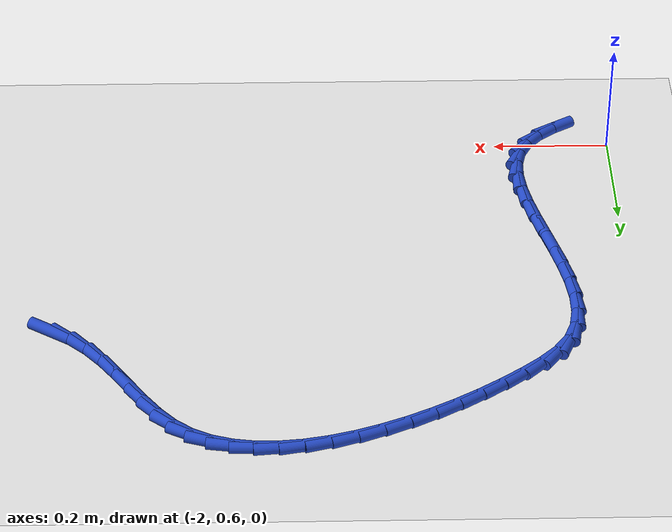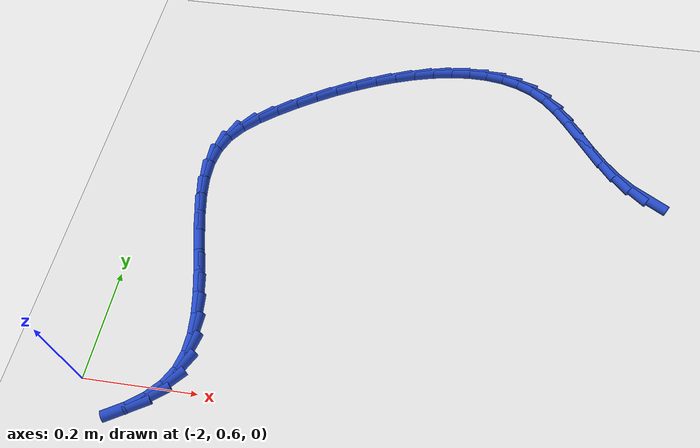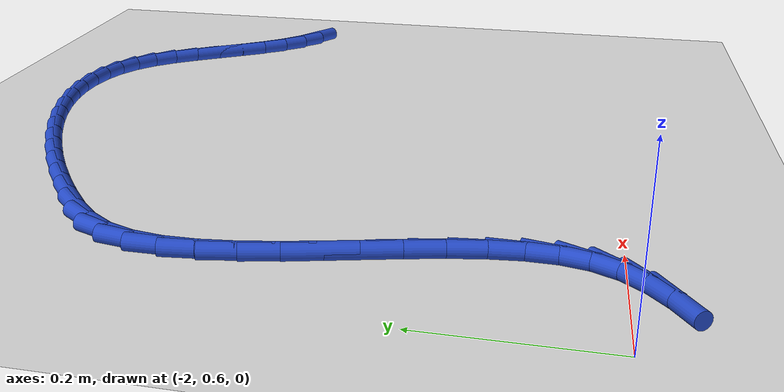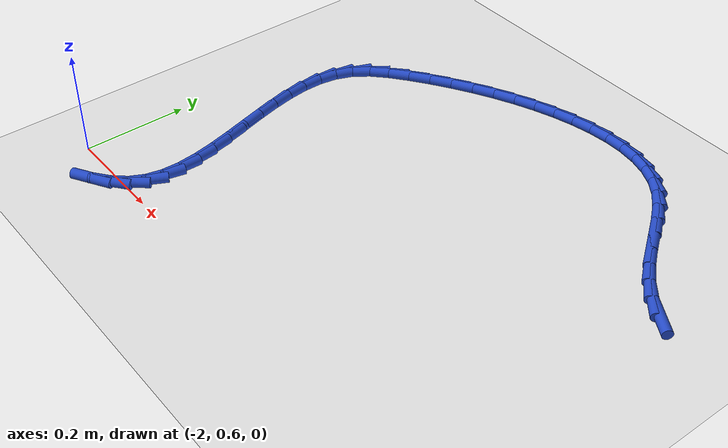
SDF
<sdf version="1.6">
 <world name="default">
  <model name="ground_plane">
   <static>1</static>
   <link name="link">
    <collision name="collision">
     <geometry><plane><normal>0 0 1</normal><size>100 100</size></plane></geometry>
     <surface><friction><ode><mu>100</mu><mu2>50</mu2></ode></friction></surface>
    </collision>
    <visual name="visual">
     <cast_shadows>0</cast_shadows>
     <geometry><plane><normal>0 0 1</normal><size>100 100</size></plane></geometry>
     <material>
      <script><uri>file://media/materials/scripts/gazebo.material</uri><name>Gazebo/WhiteGlow</name></script>
     </material>
    </visual>
   </link>
  </model>
  <model name="line">
   <link name="link_65">
    <pose>-1.0504071736064682 1.0911466266686969 0.01 0 1.57 -0.5562363748965382</pose>
    <collision name="collision">
     <geometry><cylinder><radius>0.01</radius><length>0.08</length></cylinder></geometry>
    </collision>
    <visual name="visual">
     <material>
      <script><name>Gazebo/Blue</name><uri>file://media/materials/scripts/gazebo.material</uri></script>
     </material>
     <geometry><cylinder><radius>0.01</radius><length>0.08</length></cylinder></geometry>
    </visual>
   </link>
   <link name="link_66">
    <pose>-1.082682493502889 1.1112128022618362 0.01 0 1.57 -0.7158559226145127</pose>
    <collision name="collision">
     <geometry><cylinder><radius>0.01</radius><length>0.08</length></cylinder></geometry>
    </collision>
    <visual name="visual">
     <material>
      <script><name>Gazebo/Blue</name><uri>file://media/materials/scripts/gazebo.material</uri></script>
     </material>
     <geometry><cylinder><radius>0.01</radius><length>0.08</length></cylinder></geometry>
    </visual>
   </link>
   <link name="link_67">
    <pose>-1.1114630903045932 1.1362450863596958 0.01 0 1.57 -0.836837689466625</pose>
    <collision name="collision">
     <geometry><cylinder><radius>0.01</radius><length>0.08</length></cylinder></geometry>
    </collision>
    <visual name="visual">
     <material>
      <script><name>Gazebo/Blue</name><uri>file://media/materials/scripts/gazebo.material</uri></script>
     </material>
     <geometry><cylinder><radius>0.01</radius><length>0.08</length></cylinder></geometry>
    </visual>
   </link>
   <link name="link_68">
    <pose>-1.1374184472753661 1.1650181320913315 0.01 0 1.57 -0.9200407580891101</pose>
    <collision name="collision">
     <geometry><cylinder><radius>0.01</radius><length>0.08</length></cylinder></geometry>
    </collision>
    <visual name="visual">
     <material>
      <script><name>Gazebo/Blue</name><uri>file://media/materials/scripts/gazebo.material</uri></script>
     </material>
     <geometry><cylinder><radius>0.01</radius><length>0.08</length></cylinder></geometry>
    </visual>
   </link>
   <link name="link_69">
    <pose>-1.1612311938498465 1.1962931923433506 0.01 0 1.57 -0.9620130884238275</pose>
    <collision name="collision">
     <geometry><cylinder><radius>0.01</radius><length>0.08</length></cylinder></geometry>
    </collision>
    <visual name="visual">
     <material>
      <script><name>Gazebo/Blue</name><uri>file://media/materials/scripts/gazebo.material</uri></script>
     </material>
     <geometry><cylinder><radius>0.01</radius><length>0.08</length></cylinder></geometry>
    </visual>
   </link>
   <link name="link_70">
    <pose>-1.183776878643369 1.22863487233799 0.01 0 1.57 -0.9595573245800335</pose>
    <collision name="collision">
     <geometry><cylinder><radius>0.01</radius><length>0.08</length></cylinder></geometry>
    </collision>
    <visual name="visual">
     <material>
      <script><name>Gazebo/Blue</name><uri>file://media/materials/scripts/gazebo.material</uri></script>
     </material>
     <geometry><cylinder><radius>0.01</radius><length>0.08</length></cylinder></geometry>
    </visual>
   </link>
   <link name="link_71">
    <pose>-1.206077646761988 1.2604583475860298 0.01 0 1.57 -0.9104106159157307</pose>
    <collision name="collision">
     <geometry><cylinder><radius>0.01</radius><length>0.08</length></cylinder></geometry>
    </collision>
    <visual name="visual">
     <material>
      <script><name>Gazebo/Blue</name><uri>file://media/materials/scripts/gazebo.material</uri></script>
     </material>
     <geometry><cylinder><radius>0.01</radius><length>0.08</length></cylinder></geometry>
    </visual>
   </link>
   <link name="link_72">
    <pose>-1.2291593054186412 1.2901750607150704 0.01 0 1.57 -0.8076502901971765</pose>
    <collision name="collision">
     <geometry><cylinder><radius>0.01</radius><length>0.08</length></cylinder></geometry>
    </collision>
    <visual name="visual">
     <material>
      <script><name>Gazebo/Blue</name><uri>file://media/materials/scripts/gazebo.material</uri></script>
     </material>
     <geometry><cylinder><radius>0.01</radius><length>0.08</length></cylinder></geometry>
    </visual>
   </link>
   <link name="link_73">
    <pose>-1.254047661826263 1.3161964543527096 0.01 0 1.57 -0.645544717381055</pose>
    <collision name="collision">
     <geometry><cylinder><radius>0.01</radius><length>0.08</length></cylinder></geometry>
    </collision>
    <visual name="visual">
     <material>
      <script><name>Gazebo/Blue</name><uri>file://media/materials/scripts/gazebo.material</uri></script>
     </material>
     <geometry><cylinder><radius>0.01</radius><length>0.08</length></cylinder></geometry>
    </visual>
   </link>
   <link name="link_74">
    <pose>-1.2817024167412463 1.3370259616767388 0.01 0 1.57 -0.4626129806058138</pose>
    <collision name="collision">
     <geometry><cylinder><radius>0.01</radius><length>0.08</length></cylinder></geometry>
    </collision>
    <visual name="visual">
     <material>
      <script><name>Gazebo/Blue</name><uri>file://media/materials/scripts/gazebo.material</uri></script>
     </material>
     <geometry><cylinder><radius>0.01</radius><length>0.08</length></cylinder></geometry>
    </visual>
   </link>
   <link name="link_75">
    <pose>-1.3122850684393215 1.3522777558621604 0.01 0 1.57 -0.2937310461162312</pose>
    <collision name="collision">
     <geometry><cylinder><radius>0.01</radius><length>0.08</length></cylinder></geometry>
    </collision>
    <visual name="visual">
     <material>
      <script><name>Gazebo/Blue</name><uri>file://media/materials/scripts/gazebo.material</uri></script>
     </material>
     <geometry><cylinder><radius>0.01</radius><length>0.08</length></cylinder></geometry>
    </visual>
   </link>
   <link name="link_76">
    <pose>-1.3454276756291847 1.3623027525991407 0.01 0 1.57 -0.14511048223343687</pose>
    <collision name="collision">
     <geometry><cylinder><radius>0.01</radius><length>0.08</length></cylinder></geometry>
    </collision>
    <visual name="visual">
     <material>
      <script><name>Gazebo/Blue</name><uri>file://media/materials/scripts/gazebo.material</uri></script>
     </material>
     <geometry><cylinder><radius>0.01</radius><length>0.08</length></cylinder></geometry>
    </visual>
   </link>
   <link name="link_77">
    <pose>-1.3807527995307682 1.3674650838242277 0.01 0 1.57 -0.01787566219189662</pose>
    <collision name="collision">
     <geometry><cylinder><radius>0.01</radius><length>0.08</length></cylinder></geometry>
    </collision>
    <visual name="visual">
     <material>
      <script><name>Gazebo/Blue</name><uri>file://media/materials/scripts/gazebo.material</uri></script>
     </material>
     <geometry><cylinder><radius>0.01</radius><length>0.08</length></cylinder></geometry>
    </visual>
   </link>
   <link name="link_78">
    <pose>-1.4178830013640027 1.368128881473967 0.01 0 1.57 0.0897684211265469</pose>
    <collision name="collision">
     <geometry><cylinder><radius>0.01</radius><length>0.08</length></cylinder></geometry>
    </collision>
    <visual name="visual">
     <material>
      <script><name>Gazebo/Blue</name><uri>file://media/materials/scripts/gazebo.material</uri></script>
     </material>
     <geometry><cylinder><radius>0.01</radius><length>0.08</length></cylinder></geometry>
    </visual>
   </link>
   <link name="link_79">
    <pose>-1.4564408423488187 1.3646582774849063 0.01 0 1.57 0.1808165305651898</pose>
    <collision name="collision">
     <geometry><cylinder><radius>0.01</radius><length>0.08</length></cylinder></geometry>
    </collision>
    <visual name="visual">
     <material>
      <script><name>Gazebo/Blue</name><uri>file://media/materials/scripts/gazebo.material</uri></script>
     </material>
     <geometry><cylinder><radius>0.01</radius><length>0.08</length></cylinder></geometry>
    </visual>
   </link>
   <link name="link_80">
    <pose>-1.4960488837051478 1.3574174037935922 0.01 0 1.57 0.2584100023435174</pose>
    <collision name="collision">
     <geometry><cylinder><radius>0.01</radius><length>0.08</length></cylinder></geometry>
    </collision>
    <visual name="visual">
     <material>
      <script><name>Gazebo/Blue</name><uri>file://media/materials/scripts/gazebo.material</uri></script>
     </material>
     <geometry><cylinder><radius>0.01</radius><length>0.08</length></cylinder></geometry>
    </visual>
   </link>
   <link name="link_81">
    <pose>-1.5363296866529206 1.3467703923365713 0.01 0 1.57 0.32537581945435395</pose>
    <collision name="collision">
     <geometry><cylinder><radius>0.01</radius><length>0.08</length></cylinder></geometry>
    </collision>
    <visual name="visual">
     <material>
      <script><name>Gazebo/Blue</name><uri>file://media/materials/scripts/gazebo.material</uri></script>
     </material>
     <geometry><cylinder><radius>0.01</radius><length>0.08</length></cylinder></geometry>
    </visual>
   </link>
   <link name="link_82">
    <pose>-1.5769058124120687 1.333081375050391 0.01 0 1.57 0.38410509680302624</pose>
    <collision name="collision">
     <geometry><cylinder><radius>0.01</radius><length>0.08</length></cylinder></geometry>
    </collision>
    <visual name="visual">
     <material>
      <script><name>Gazebo/Blue</name><uri>file://media/materials/scripts/gazebo.material</uri></script>
     </material>
     <geometry><cylinder><radius>0.01</radius><length>0.08</length></cylinder></geometry>
    </visual>
   </link>
   <link name="link_83">
    <pose>-1.6173998222025219 1.3167144838715974 0.01 0 1.57 0.4365838272809401</pose>
    <collision name="collision">
     <geometry><cylinder><radius>0.01</radius><length>0.08</length></cylinder></geometry>
    </collision>
    <visual name="visual">
     <material>
      <script><name>Gazebo/Blue</name><uri>file://media/materials/scripts/gazebo.material</uri></script>
     </material>
     <geometry><cylinder><radius>0.01</radius><length>0.08</length></cylinder></geometry>
    </visual>
   </link>
   <link name="link_84">
    <pose>-1.6574342772442132 1.2980338507367384 0.01 0 1.57 0.4844779340889008</pose>
    <collision name="collision">
     <geometry><cylinder><radius>0.01</radius><length>0.08</length></cylinder></geometry>
    </collision>
    <visual name="visual">
     <material>
      <script><name>Gazebo/Blue</name><uri>file://media/materials/scripts/gazebo.material</uri></script>
     </material>
     <geometry><cylinder><radius>0.01</radius><length>0.08</length></cylinder></geometry>
    </visual>
   </link>
   <link name="link_85">
    <pose>-1.696631738757072 1.2774036075823596 0.01 0 1.57 0.5292317242306191</pose>
    <collision name="collision">
     <geometry><cylinder><radius>0.01</radius><length>0.08</length></cylinder></geometry>
    </collision>
    <visual name="visual">
     <material>
      <script><name>Gazebo/Blue</name><uri>file://media/materials/scripts/gazebo.material</uri></script>
     </material>
     <geometry><cylinder><radius>0.01</radius><length>0.08</length></cylinder></geometry>
    </visual>
   </link>
   <link name="link_86">
    <pose>-1.7346147679610295 1.255187886345009 0.01 0 1.57 0.5721682849997948</pose>
    <collision name="collision">
     <geometry><cylinder><radius>0.01</radius><length>0.08</length></cylinder></geometry>
    </collision>
    <visual name="visual">
     <material>
      <script><name>Gazebo/Blue</name><uri>file://media/materials/scripts/gazebo.material</uri></script>
     </material>
     <geometry><cylinder><radius>0.01</radius><length>0.08</length></cylinder></geometry>
    </visual>
   </link>
   <link name="link_87">
    <pose>-1.7710059260760174 1.231750818961233 0.01 0 1.57 0.6145952073464459</pose>
    <collision name="collision">
     <geometry><cylinder><radius>0.01</radius><length>0.08</length></cylinder></geometry>
    </collision>
    <visual name="visual">
     <material>
      <script><name>Gazebo/Blue</name><uri>file://media/materials/scripts/gazebo.material</uri></script>
     </material>
     <geometry><cylinder><radius>0.01</radius><length>0.08</length></cylinder></geometry>
    </visual>
   </link>
   <link name="link_88">
    <pose>-1.805427774321966 1.2074565373675787 0.01 0 1.57 0.6629492029517123</pose>
    <collision name="collision">
     <geometry><cylinder><radius>0.01</radius><length>0.08</length></cylinder></geometry>
    </collision>
    <visual name="visual">
     <material>
      <script><name>Gazebo/Blue</name><uri>file://media/materials/scripts/gazebo.material</uri></script>
     </material>
     <geometry><cylinder><radius>0.01</radius><length>0.08</length></cylinder></geometry>
    </visual>
   </link>
   <link name="link_89">
    <pose>-1.8373420802260738 1.1825365263755911 0.01 0 1.57 0.7598694328492717</pose>
    <collision name="collision">
     <geometry><cylinder><radius>0.01</radius><length>0.08</length></cylinder></geometry>
    </collision>
    <visual name="visual">
     <material>
      <script><name>Gazebo/Blue</name><uri>file://media/materials/scripts/gazebo.material</uri></script>
     </material>
     <geometry><cylinder><radius>0.01</radius><length>0.08</length></cylinder></geometry>
    </visual>
   </link>
   <link name="link_90">
    <pose>-1.8650182037555765 1.156238591449885 0.01 0 1.57 0.9380376707604318</pose>
    <collision name="collision">
     <geometry><cylinder><radius>0.01</radius><length>0.08</length></cylinder></geometry>
    </collision>
    <visual name="visual">
     <material>
      <script><name>Gazebo/Blue</name><uri>file://media/materials/scripts/gazebo.material</uri></script>
     </material>
     <geometry><cylinder><radius>0.01</radius><length>0.08</length></cylinder></geometry>
    </visual>
   </link>
   <link name="link_91">
    <pose>-1.8861899730026372 1.1273685915868867 0.01 0 1.57 1.1834040272054063</pose>
    <collision name="collision">
     <geometry><cylinder><radius>0.01</radius><length>0.08</length></cylinder></geometry>
    </collision>
    <visual name="visual">
     <material>
      <script><name>Gazebo/Blue</name><uri>file://media/materials/scripts/gazebo.material</uri></script>
     </material>
     <geometry><cylinder><radius>0.01</radius><length>0.08</length></cylinder></geometry>
    </visual>
   </link>
   <link name="link_92">
    <pose>-1.8993499096859219 1.0951146241884688 0.01 0 1.57 1.40409815559431</pose>
    <collision name="collision">
     <geometry><cylinder><radius>0.01</radius><length>0.08</length></cylinder></geometry>
    </collision>
    <visual name="visual">
     <material>
      <script><name>Gazebo/Blue</name><uri>file://media/materials/scripts/gazebo.material</uri></script>
     </material>
     <geometry><cylinder><radius>0.01</radius><length>0.08</length></cylinder></geometry>
    </visual>
   </link>
   <link name="link_93">
    <pose>-1.9052877869302152 1.0598246512591025 0.01 0 1.57 -1.56913358390307</pose>
    <collision name="collision">
     <geometry><cylinder><radius>0.01</radius><length>0.08</length></cylinder></geometry>
    </collision>
    <visual name="visual">
     <material>
      <script><name>Gazebo/Blue</name><uri>file://media/materials/scripts/gazebo.material</uri></script>
     </material>
     <geometry><cylinder><radius>0.01</radius><length>0.08</length></cylinder></geometry>
    </visual>
   </link>
   <link name="link_94">
    <pose>-1.9052250015461738 1.0220645582893662 0.01 0 1.57 -1.4493216554641628</pose>
    <collision name="collision">
     <geometry><cylinder><radius>0.01</radius><length>0.08</length></cylinder></geometry>
    </collision>
    <visual name="visual">
     <material>
      <script><name>Gazebo/Blue</name><uri>file://media/materials/scripts/gazebo.material</uri></script>
     </material>
     <geometry><cylinder><radius>0.01</radius><length>0.08</length></cylinder></geometry>
    </visual>
   </link>
   <link name="link_95">
    <pose>-1.9003829503444574 0.9824002307698395 0.01 0 1.57 -1.3687294685810998</pose>
    <collision name="collision">
     <geometry><cylinder><radius>0.01</radius><length>0.08</length></cylinder></geometry>
    </collision>
    <visual name="visual">
     <material>
      <script><name>Gazebo/Blue</name><uri>file://media/materials/scripts/gazebo.material</uri></script>
     </material>
     <geometry><cylinder><radius>0.01</radius><length>0.08</length></cylinder></geometry>
    </visual>
   </link>
   <link name="link_96">
    <pose>-1.8919830301357226 0.9413975541911019 0.01 0 1.57 -1.3192362836208853</pose>
    <collision name="collision">
     <geometry><cylinder><radius>0.01</radius><length>0.08</length></cylinder></geometry>
    </collision>
    <visual name="visual">
     <material>
      <script><name>Gazebo/Blue</name><uri>file://media/materials/scripts/gazebo.material</uri></script>
     </material>
     <geometry><cylinder><radius>0.01</radius><length>0.08</length></cylinder></geometry>
    </visual>
   </link>
   <link name="link_97">
    <pose>-1.8812466377306267 0.8996224140437319 0.01 0 1.57 -1.2956554765596566</pose>
    <collision name="collision">
     <geometry><cylinder><radius>0.01</radius><length>0.08</length></cylinder></geometry>
    </collision>
    <visual name="visual">
     <material>
      <script><name>Gazebo/Blue</name><uri>file://media/materials/scripts/gazebo.material</uri></script>
     </material>
     <geometry><cylinder><radius>0.01</radius><length>0.08</length></cylinder></geometry>
    </visual>
   </link>
   <link name="link_98">
    <pose>-1.8693951699398292 0.8576406958183092 0.01 0 1.57 -1.2957642639651008</pose>
    <collision name="collision">
     <geometry><cylinder><radius>0.01</radius><length>0.08</length></cylinder></geometry>
    </collision>
    <visual name="visual">
     <material>
      <script><name>Gazebo/Blue</name><uri>file://media/materials/scripts/gazebo.material</uri></script>
     </material>
     <geometry><cylinder><radius>0.01</radius><length>0.08</length></cylinder></geometry>
    </visual>
   </link>
   <link name="link_99">
    <pose>-1.8576500235739875 0.8160182850054133 0.01 0 1.57 -1.3202030619272072</pose>
    <collision name="collision">
     <geometry><cylinder><radius>0.01</radius><length>0.08</length></cylinder></geometry>
    </collision>
    <visual name="visual">
     <material>
      <script><name>Gazebo/Blue</name><uri>file://media/materials/scripts/gazebo.material</uri></script>
     </material>
     <geometry><cylinder><radius>0.01</radius><length>0.08</length></cylinder></geometry>
    </visual>
   </link>
   <link name="link_100">
    <pose>-1.8472325954437594 0.7753210670956229 0.01 0 1.57 -1.3727365857735303</pose>
    <collision name="collision">
     <geometry><cylinder><radius>0.01</radius><length>0.08</length></cylinder></geometry>
    </collision>
    <visual name="visual">
     <material>
      <script><name>Gazebo/Blue</name><uri>file://media/materials/scripts/gazebo.material</uri></script>
     </material>
     <geometry><cylinder><radius>0.01</radius><length>0.08</length></cylinder></geometry>
    </visual>
   </link>
   <link name="link_101">
    <pose>-1.839364282359802 0.7361149275795175 0.01 0 1.57 -1.4609338232325633</pose>
    <collision name="collision">
     <geometry><cylinder><radius>0.01</radius><length>0.08</length></cylinder></geometry>
    </collision>
    <visual name="visual">
     <material>
      <script><name>Gazebo/Blue</name><uri>file://media/materials/scripts/gazebo.material</uri></script>
     </material>
     <geometry><cylinder><radius>0.01</radius><length>0.08</length></cylinder></geometry>
    </visual>
   </link>
   <link name="link_102">
    <pose>-1.8352664811327746 0.6989657519476763 0.01 0 1.57 1.5449057166989626</pose>
    <collision name="collision">
     <geometry><cylinder><radius>0.01</radius><length>0.08</length></cylinder></geometry>
    </collision>
    <visual name="visual">
     <material>
      <script><name>Gazebo/Blue</name><uri>file://media/materials/scripts/gazebo.material</uri></script>
     </material>
     <geometry><cylinder><radius>0.01</radius><length>0.08</length></cylinder></geometry>
    </visual>
   </link>
   <link name="link_103">
    <pose>-1.8361605885733345 0.6644394256906787 0.01 0 1.57 1.347767848166166</pose>
    <collision name="collision">
     <geometry><cylinder><radius>0.01</radius><length>0.08</length></cylinder></geometry>
    </collision>
    <visual name="visual">
     <material>
      <script><name>Gazebo/Blue</name><uri>file://media/materials/scripts/gazebo.material</uri></script>
     </material>
     <geometry><cylinder><radius>0.01</radius><length>0.08</length></cylinder></geometry>
    </visual>
   </link>
   <link name="link_104">
    <pose>-1.8432680014921394 0.6331018342991036 0.01 0 1.57 1.0895851917926642</pose>
    <collision name="collision">
     <geometry><cylinder><radius>0.01</radius><length>0.08</length></cylinder></geometry>
    </collision>
    <visual name="visual">
     <material>
      <script><name>Gazebo/Blue</name><uri>file://media/materials/scripts/gazebo.material</uri></script>
     </material>
     <geometry><cylinder><radius>0.01</radius><length>0.08</length></cylinder></geometry>
    </visual>
   </link>
   <link name="link_105">
    <pose>-1.8577024606449202 0.6054576216224054 0.01 0 1.57 0.841820273825594</pose>
    <collision name="collision">
     <geometry><cylinder><radius>0.01</radius><length>0.08</length></cylinder></geometry>
    </collision>
    <visual name="visual">
     <material>
      <script><name>Gazebo/Blue</name><uri>file://media/materials/scripts/gazebo.material</uri></script>
     </material>
     <geometry><cylinder><radius>0.01</radius><length>0.08</length></cylinder></geometry>
    </visual>
   </link>
   <link name="link_106">
    <pose>-1.879293896565677 0.5812811182459497 0.01 0 1.57 0.6575120429441543</pose>
    <collision name="collision">
     <geometry><cylinder><radius>0.01</radius><length>0.08</length></cylinder></geometry>
    </collision>
    <visual name="visual">
     <material>
      <script><name>Gazebo/Blue</name><uri>file://media/materials/scripts/gazebo.material</uri></script>
     </material>
     <geometry><cylinder><radius>0.01</radius><length>0.08</length></cylinder></geometry>
    </visual>
   </link>
   <link name="link_107">
    <pose>-1.9070283710915064 0.5598666083338616 0.01 0 1.57 0.5327146054652401</pose>
    <collision name="collision">
     <geometry><cylinder><radius>0.01</radius><length>0.08</length></cylinder></geometry>
    </collision>
    <visual name="visual">
     <material>
      <script><name>Gazebo/Blue</name><uri>file://media/materials/scripts/gazebo.material</uri></script>
     </material>
     <geometry><cylinder><radius>0.01</radius><length>0.08</length></cylinder></geometry>
    </visual>
   </link>
  </model>
 </world>
</sdf>
